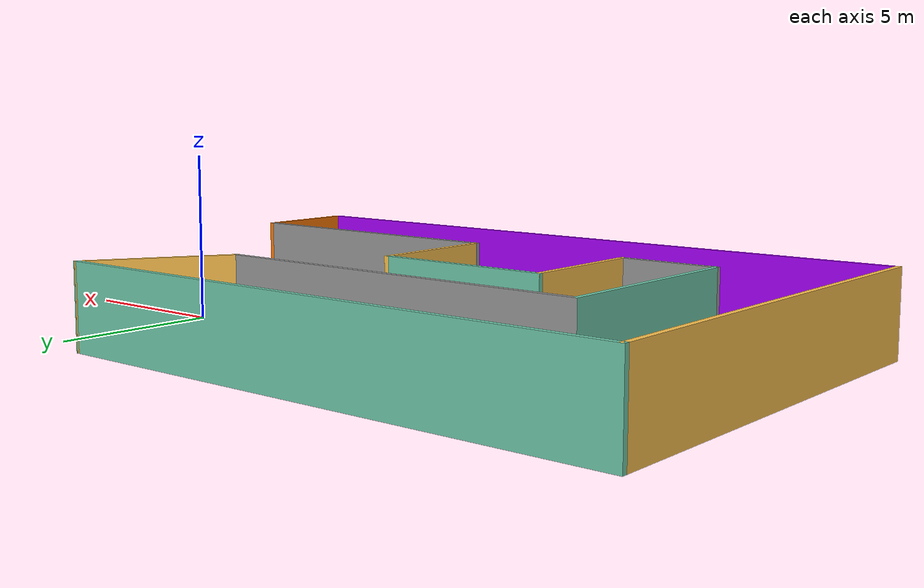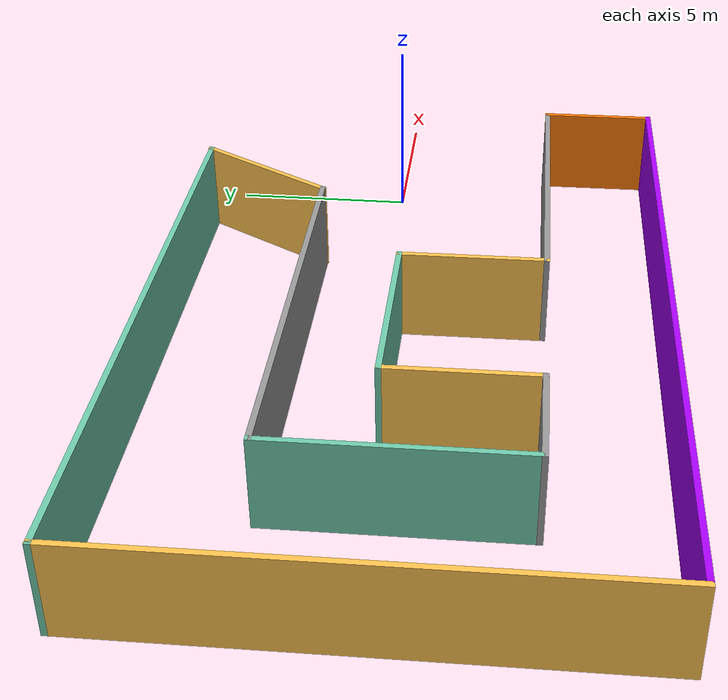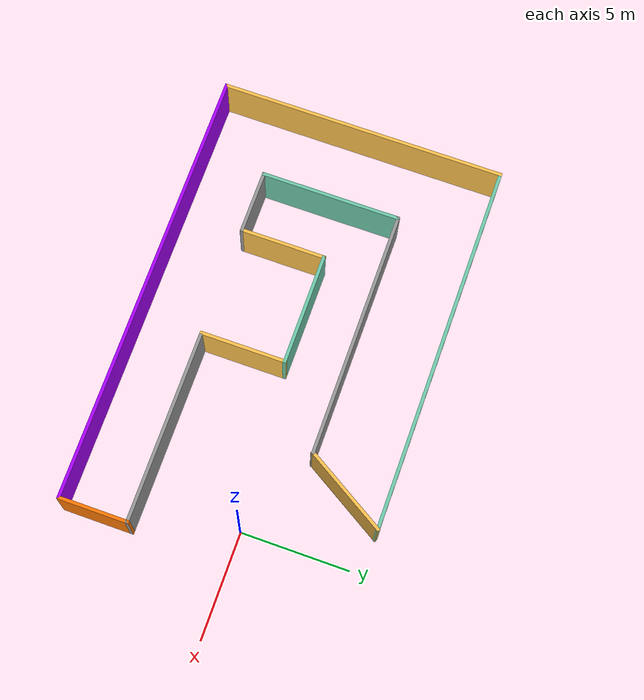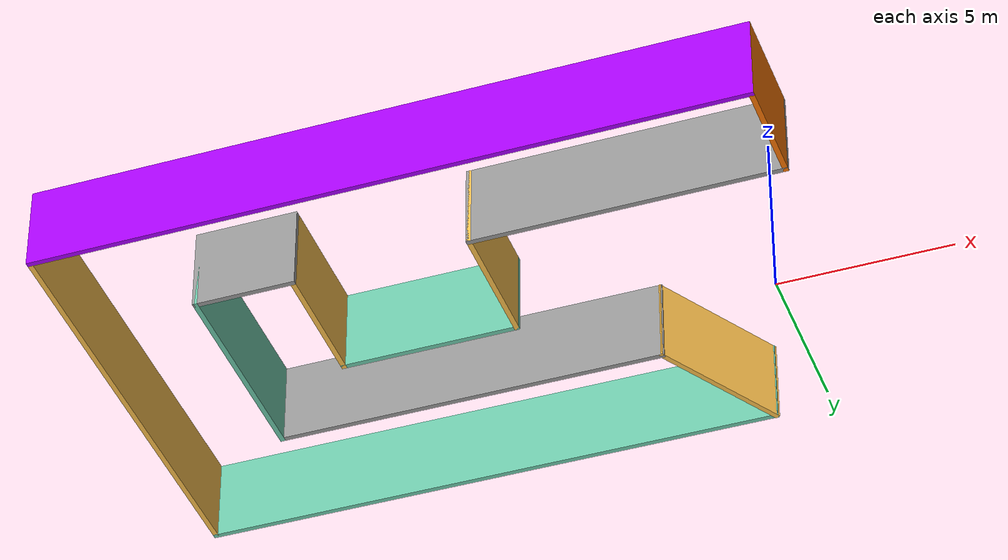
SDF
<?xml version='1.0'?>
<sdf version='1.6'>
  <model name='environment'>
    <pose frame=''>-8.59407 -0.957443 0 0 -0 0</pose>
    <link name='Wall_10'>
      <collision name='Wall_10_Collision'>
        <geometry>
          <box>
            <size>3 0.15 2.5</size>
          </box>
        </geometry>
        <pose frame=''>0 0 1.25 0 -0 0</pose>
      </collision>
      <visual name='Wall_10_Visual'>
        <pose frame=''>0 0 1.25 0 -0 0</pose>
        <geometry>
          <box>
            <size>3 0.15 2.5</size>
          </box>
        </geometry>
        <material>
          <script>
            <uri>file://media/materials/scripts/gazebo.material</uri>
            <name>Gazebo/Grey</name>
          </script>
          <ambient>1 1 1 1</ambient>
        </material>
        <meta>
          <layer>0</layer>
        </meta>
      </visual>
      <pose frame=''>-5.2 -3.46398 0 0 -0 3.14159</pose>
    </link>
    <link name='Wall_11'>
      <collision name='Wall_11_Collision'>
        <geometry>
          <box>
            <size>6.5 0.15 2.5</size>
          </box>
        </geometry>
        <pose frame=''>0 0 1.25 0 -0 0</pose>
      </collision>
      <visual name='Wall_11_Visual'>
        <pose frame=''>0 0 1.25 0 -0 0</pose>
        <geometry>
          <box>
            <size>6.5 0.15 2.5</size>
          </box>
        </geometry>
        <material>
          <script>
            <uri>file://media/materials/scripts/gazebo.material</uri>
            <name>Gazebo/Grey</name>
          </script>
          <ambient>0.435294 0.796078 0.67451 1</ambient>
        </material>
        <meta>
          <layer>0</layer>
        </meta>
      </visual>
      <pose frame=''>-6.625 -0.288975 0 0 -0 1.5708</pose>
    </link>
    <link name='Wall_12'>
      <collision name='Wall_12_Collision'>
        <geometry>
          <box>
            <size>11.5 0.15 2.5</size>
          </box>
        </geometry>
        <pose frame=''>0 0 1.25 0 -0 0</pose>
      </collision>
      <visual name='Wall_12_Visual'>
        <pose frame=''>0 0 1.25 0 -0 0</pose>
        <geometry>
          <box>
            <size>11.5 0.15 2.5</size>
          </box>
        </geometry>
        <material>
          <script>
            <uri>file://media/materials/scripts/gazebo.material</uri>
            <name>Gazebo/Grey</name>
          </script>
          <ambient>1 1 1 1</ambient>
        </material>
        <meta>
          <layer>0</layer>
        </meta>
      </visual>
      <pose frame=''>-0.95 2.88603 0 0 -0 0</pose>
    </link>
    <link name='Wall_16'>
      <collision name='Wall_16_Collision'>
        <geometry>
          <box>
            <size>17.25 0.15 2.5</size>
          </box>
        </geometry>
        <pose frame=''>0 0 1.25 0 -0 0</pose>
      </collision>
      <visual name='Wall_16_Visual'>
        <pose frame=''>0 0 1.25 0 -0 0</pose>
        <geometry>
          <box>
            <size>17.25 0.15 2.5</size>
          </box>
        </geometry>
        <material>
          <script>
            <uri>file://media/materials/scripts/gazebo.material</uri>
            <name>Gazebo/Grey</name>
          </script>
          <ambient>0.435294 0.796078 0.67451 1</ambient>
        </material>
        <meta>
          <layer>0</layer>
        </meta>
      </visual>
      <pose frame=''>-1.625 6.53603 0 0 -0 0</pose>
    </link>
    <link name='Wall_17'>
      <collision name='Wall_17_Collision'>
        <geometry>
          <box>
            <size>4.41175 0.15 2.5</size>
          </box>
        </geometry>
        <pose frame=''>0 0 1.25 0 -0 0</pose>
      </collision>
      <visual name='Wall_17_Visual'>
        <pose frame=''>0 0 1.25 0 -0 0</pose>
        <geometry>
          <box>
            <size>4.41175 0.15 2.5</size>
          </box>
        </geometry>
        <material>
          <script>
            <uri>file://media/materials/scripts/gazebo.material</uri>
            <name>Gazebo/Grey</name>
          </script>
          <ambient>1 0.764706 0.305882 1</ambient>
        </material>
        <meta>
          <layer>0</layer>
        </meta>
      </visual>
      <pose frame=''>5.825 4.71103 0 0 0 -2.11323</pose>
    </link>
    <link name='Wall_3'>
      <collision name='Wall_3_Collision'>
        <geometry>
          <box>
            <size>13.25 0.15 2.5</size>
          </box>
        </geometry>
        <pose frame=''>0 0 1.25 0 -0 0</pose>
      </collision>
      <visual name='Wall_3_Visual'>
        <pose frame=''>0 0 1.25 0 -0 0</pose>
        <geometry>
          <box>
            <size>13.25 0.15 2.5</size>
          </box>
        </geometry>
        <material>
          <script>
            <uri>file://media/materials/scripts/gazebo.material</uri>
            <name>Gazebo/Grey</name>
          </script>
          <ambient>1 0.764706 0.305882 1</ambient>
        </material>
        <meta>
          <layer>0</layer>
        </meta>
      </visual>
      <pose frame=''>-10.175 -0.013975 0 0 0 -1.5708</pose>
    </link>
    <link name='Wall_4'>
      <collision name='Wall_4_Collision'>
        <geometry>
          <box>
            <size>20.5 0.15 2.5</size>
          </box>
        </geometry>
        <pose frame=''>0 0 1.25 0 -0 0</pose>
      </collision>
      <visual name='Wall_4_Visual'>
        <pose frame=''>0 0 1.25 0 -0 0</pose>
        <geometry>
          <box>
            <size>20.5 0.15 2.5</size>
          </box>
        </geometry>
        <material>
          <script>
            <uri>file://media/materials/scripts/gazebo.material</uri>
            <name>Gazebo/Grey</name>
          </script>
          <ambient>0.666667 0 1 1</ambient>
        </material>
        <meta>
          <layer>0</layer>
        </meta>
      </visual>
      <pose frame=''>0 -6.56398 0 0 -0 0</pose>
    </link>
    <link name='Wall_5'>
      <collision name='Wall_5_Collision'>
        <geometry>
          <box>
            <size>3.25 0.15 2.5</size>
          </box>
        </geometry>
        <pose frame=''>0 0 1.25 0 -0 0</pose>
      </collision>
      <visual name='Wall_5_Visual'>
        <pose frame=''>0 0 1.25 0 -0 0</pose>
        <geometry>
          <box>
            <size>3.25 0.15 2.5</size>
          </box>
        </geometry>
        <material>
          <script>
            <uri>file://media/materials/scripts/gazebo.material</uri>
            <name>Gazebo/Grey</name>
          </script>
          <ambient>0.996078 0.47451 0.0196078 1</ambient>
        </material>
        <meta>
          <layer>0</layer>
        </meta>
      </visual>
      <pose frame=''>10.175 -5.01398 0 0 -0 1.5708</pose>
    </link>
    <link name='Wall_6'>
      <collision name='Wall_6_Collision'>
        <geometry>
          <box>
            <size>9 0.15 2.5</size>
          </box>
        </geometry>
        <pose frame=''>0 0 1.25 0 -0 0</pose>
      </collision>
      <visual name='Wall_6_Visual'>
        <pose frame=''>0 0 1.25 0 -0 0</pose>
        <geometry>
          <box>
            <size>9 0.15 2.5</size>
          </box>
        </geometry>
        <material>
          <script>
            <uri>file://media/materials/scripts/gazebo.material</uri>
            <name>Gazebo/Grey</name>
          </script>
          <ambient>1 1 1 1</ambient>
        </material>
        <meta>
          <layer>0</layer>
        </meta>
      </visual>
      <pose frame=''>5.75 -3.46398 0 0 -0 3.14159</pose>
    </link>
    <link name='Wall_7'>
      <collision name='Wall_7_Collision'>
        <geometry>
          <box>
            <size>4 0.15 2.5</size>
          </box>
        </geometry>
        <pose frame=''>0 0 1.25 0 -0 0</pose>
      </collision>
      <visual name='Wall_7_Visual'>
        <pose frame=''>0 0 1.25 0 -0 0</pose>
        <geometry>
          <box>
            <size>4 0.15 2.5</size>
          </box>
        </geometry>
        <material>
          <script>
            <uri>file://media/materials/scripts/gazebo.material</uri>
            <name>Gazebo/Grey</name>
          </script>
          <ambient>1 0.764706 0.305882 1</ambient>
        </material>
        <meta>
          <layer>0</layer>
        </meta>
      </visual>
      <pose frame=''>1.325 -1.53897 0 0 -0 1.5708</pose>
    </link>
    <link name='Wall_8'>
      <collision name='Wall_8_Collision'>
        <geometry>
          <box>
            <size>5.25 0.15 2.5</size>
          </box>
        </geometry>
        <pose frame=''>0 0 1.25 0 -0 0</pose>
      </collision>
      <visual name='Wall_8_Visual'>
        <pose frame=''>0 0 1.25 0 -0 0</pose>
        <geometry>
          <box>
            <size>5.25 0.15 2.5</size>
          </box>
        </geometry>
        <material>
          <script>
            <uri>file://media/materials/scripts/gazebo.material</uri>
            <name>Gazebo/Grey</name>
          </script>
          <ambient>0.435294 0.796078 0.67451 1</ambient>
        </material>
        <meta>
          <layer>0</layer>
        </meta>
      </visual>
      <pose frame=''>-1.225 0.386025 0 0 -0 3.14159</pose>
    </link>
    <link name='Wall_9'>
      <collision name='Wall_9_Collision'>
        <geometry>
          <box>
            <size>4 0.15 2.5</size>
          </box>
        </geometry>
        <pose frame=''>0 0 1.25 0 -0 0</pose>
      </collision>
      <visual name='Wall_9_Visual'>
        <pose frame=''>0 0 1.25 0 -0 0</pose>
        <geometry>
          <box>
            <size>4 0.15 2.5</size>
          </box>
        </geometry>
        <material>
          <script>
            <uri>file://media/materials/scripts/gazebo.material</uri>
            <name>Gazebo/Grey</name>
          </script>
          <ambient>1 0.764706 0.305882 1</ambient>
        </material>
        <meta>
          <layer>0</layer>
        </meta>
      </visual>
      <pose frame=''>-3.775 -1.53897 0 0 0 -1.5708</pose>
    </link>
    <static>1</static>
  </model>
</sdf>
